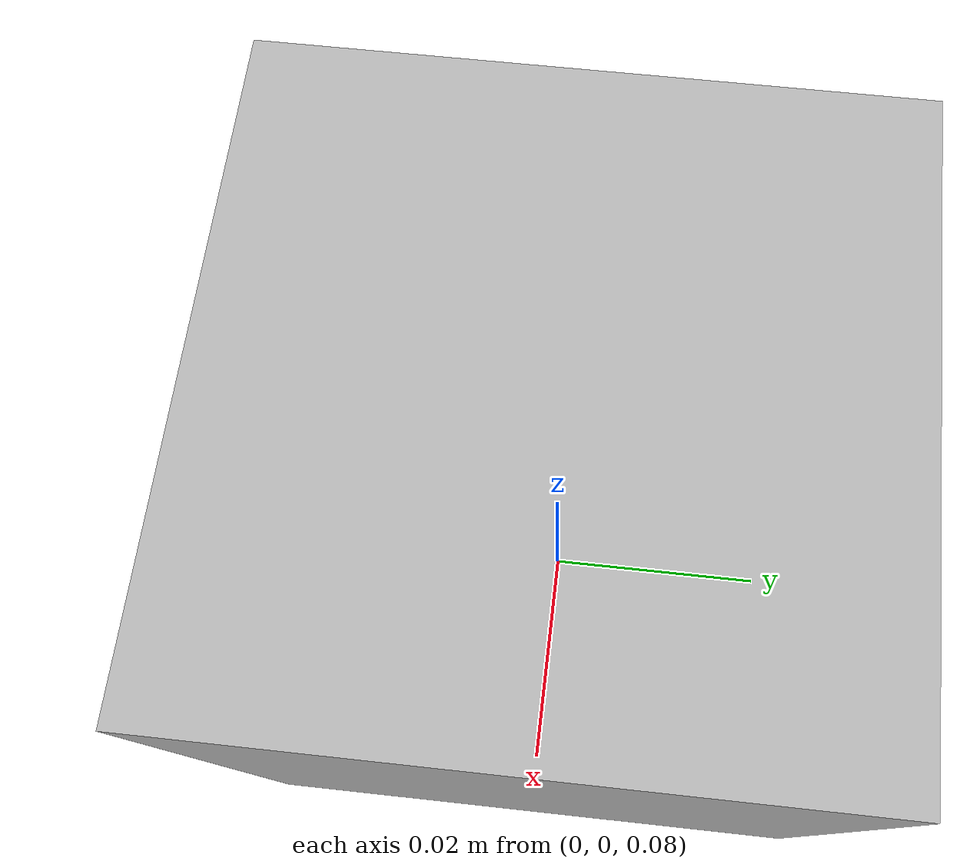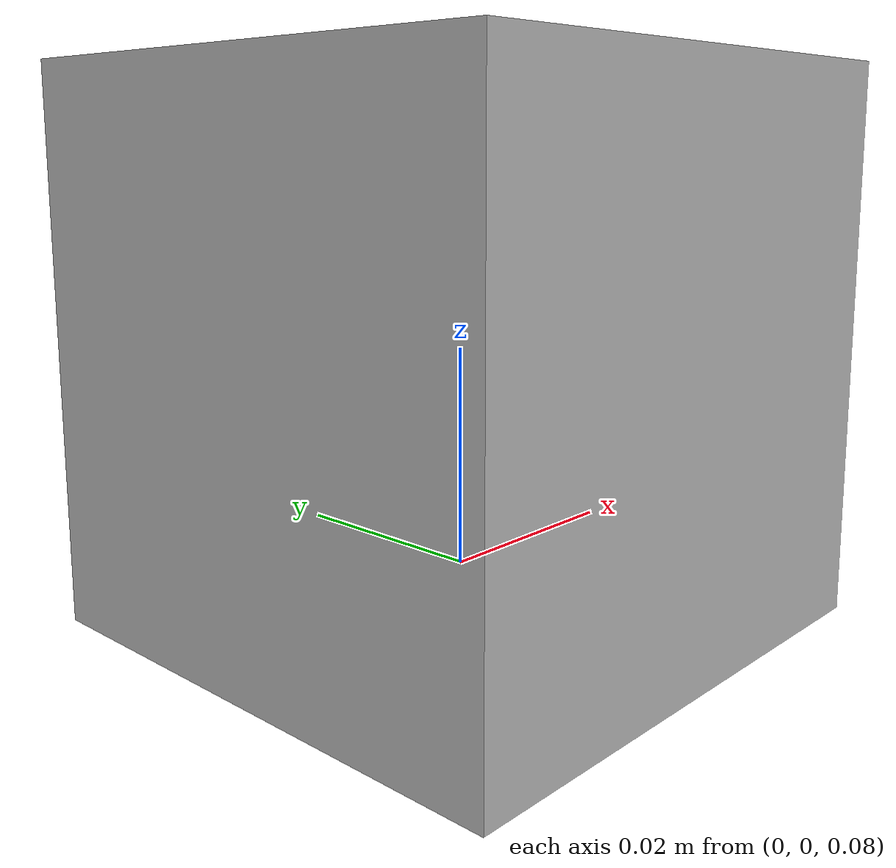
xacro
<?xml version="1.0" ?>
<robot name="camera" xmlns:xacro="http://wiki.ros.org/xacro">

    <link name="world"/>

    <xacro:property name="camera_size" value="0.05" />
    <xacro:property name="camera_mass" value="0.1" />

    <material name="LightGrey">
        <color rgba="0.7 0.7 0.7 1.0" />
    </material>

    <joint name="camera_world_joint" type="fixed">
        <parent link="world"/>
        <child link="camera_link"/>
        <origin rpy="0 0 0" xyz="0 0 0.1"/>
    </joint>

    <link name="camera_link">
        <visual>
            <origin rpy="0 0 0" xyz="0 0 0"/>
            <geometry>
                <box size="${camera_size} ${camera_size} ${camera_size}" />
            </geometry>
            <material name="LightGrey"/>
        </visual>
        <collision>
            <origin rpy="0 0 0" xyz="0 0 0"/>
            <geometry>
                <box size="${camera_size} ${camera_size} ${camera_size}" />
            </geometry>
        </collision>
        <inertial>
            <mass value="${camera_mass}"/>
            <origin rpy="0 0 0" xyz="0 0 0"/>
            <inertia ixx="${(camera_mass/12.0) * (camera_size*camera_size + camera_size*camera_size)}" ixy="0" ixz="0"
                     iyy="${(camera_mass/12.0) * (camera_size*camera_size + camera_size*camera_size)}" iyz="0"
                     izz="${(camera_mass/12.0) * (camera_size*camera_size + camera_size*camera_size)}"/>
        </inertial>
    </link>

    <!-- CORRECT Gazebo sensor configuration for ROS2 Jazzy -->
    <gazebo reference="camera_link">
        <material>Gazebo/Grey</material>
        <sensor name="camera_sensor" type="camera">
            <camera>
                <horizontal_fov>1.047</horizontal_fov>
                <image>
                    <width>640</width>
                    <height>480</height>
                    <format>R8G8B8</format>
                </image>
                <clip>
                    <near>0.1</near>
                    <far>100</far>
                </clip>
            </camera>
            <always_on>true</always_on>
            <update_rate>30.0</update_rate>
            <visualize>true</visualize>
            <!-- NO PLUGIN - let Gazebo Sim handle it automatically -->
        </sensor>
    </gazebo>

</robot>
